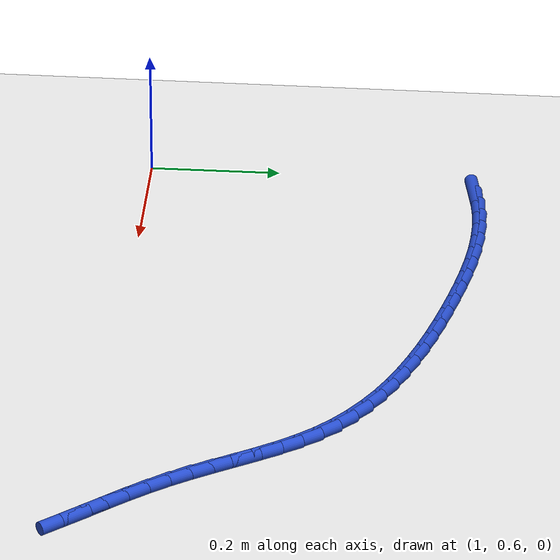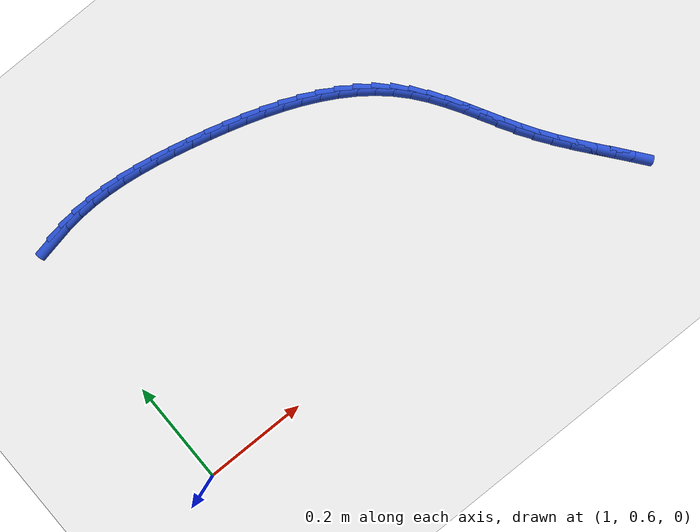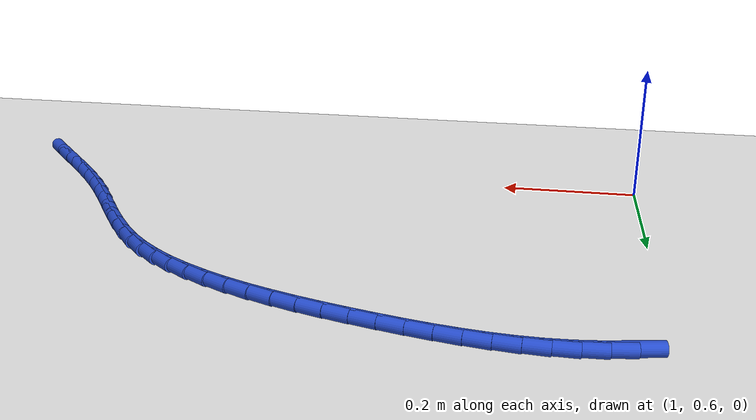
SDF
<sdf version="1.6">
 <world name="default">
  <model name="ground_plane">
   <static>1</static>
   <link name="link">
    <collision name="collision">
     <geometry><plane><normal>0 0 1</normal><size>100 100</size></plane></geometry>
     <surface><friction><ode><mu>100</mu><mu2>50</mu2></ode></friction></surface>
    </collision>
    <visual name="visual">
     <cast_shadows>0</cast_shadows>
     <geometry><plane><normal>0 0 1</normal><size>100 100</size></plane></geometry>
     <material>
      <script><uri>file://media/materials/scripts/gazebo.material</uri><name>Gazebo/WhiteGlow</name></script>
     </material>
    </visual>
   </link>
  </model>
  <model name="line">
   <link name="link_49">
    <pose>1.0501418941555487 1.106161228699307 0.01 0 1.57 0.18047848449558837</pose>
    <collision name="collision">
     <geometry><cylinder><radius>0.01</radius><length>0.08</length></cylinder></geometry>
    </collision>
    <visual name="visual">
     <material>
      <script><name>Gazebo/Blue</name><uri>file://media/materials/scripts/gazebo.material</uri></script>
     </material>
     <geometry><cylinder><radius>0.01</radius><length>0.08</length></cylinder></geometry>
    </visual>
   </link>
   <link name="link_50">
    <pose>1.0819418110127272 1.1119635655688427 0.01 0 1.57 0.1095363059471987</pose>
    <collision name="collision">
     <geometry><cylinder><radius>0.01</radius><length>0.08</length></cylinder></geometry>
    </collision>
    <visual name="visual">
     <material>
      <script><name>Gazebo/Blue</name><uri>file://media/materials/scripts/gazebo.material</uri></script>
     </material>
     <geometry><cylinder><radius>0.01</radius><length>0.08</length></cylinder></geometry>
    </visual>
   </link>
   <link name="link_51">
    <pose>1.1141065732753948 1.1155009334898973 0.01 0 1.57 0.03584947656787952</pose>
    <collision name="collision">
     <geometry><cylinder><radius>0.01</radius><length>0.08</length></cylinder></geometry>
    </collision>
    <visual name="visual">
     <material>
      <script><name>Gazebo/Blue</name><uri>file://media/materials/scripts/gazebo.material</uri></script>
     </material>
     <geometry><cylinder><radius>0.01</radius><length>0.08</length></cylinder></geometry>
    </visual>
   </link>
   <link name="link_52">
    <pose>1.146678751920672 1.1166691295372233 0.01 0 1.57 -0.029940667456427227</pose>
    <collision name="collision">
     <geometry><cylinder><radius>0.01</radius><length>0.08</length></cylinder></geometry>
    </collision>
    <visual name="visual">
     <material>
      <script><name>Gazebo/Blue</name><uri>file://media/materials/scripts/gazebo.material</uri></script>
     </material>
     <geometry><cylinder><radius>0.01</radius><length>0.08</length></cylinder></geometry>
    </visual>
   </link>
   <link name="link_53">
    <pose>1.1796179706755174 1.1156826125389854 0.01 0 1.57 -0.08688996958565974</pose>
    <collision name="collision">
     <geometry><cylinder><radius>0.01</radius><length>0.08</length></cylinder></geometry>
    </collision>
    <visual name="visual">
     <material>
      <script><name>Gazebo/Blue</name><uri>file://media/materials/scripts/gazebo.material</uri></script>
     </material>
     <geometry><cylinder><radius>0.01</radius><length>0.08</length></cylinder></geometry>
    </visual>
   </link>
   <link name="link_54">
    <pose>1.2128761285576757 1.1127855176462742 0.01 0 1.57 -0.13527594651336852</pose>
    <collision name="collision">
     <geometry><cylinder><radius>0.01</radius><length>0.08</length></cylinder></geometry>
    </collision>
    <visual name="visual">
     <material>
      <script><name>Gazebo/Blue</name><uri>file://media/materials/scripts/gazebo.material</uri></script>
     </material>
     <geometry><cylinder><radius>0.01</radius><length>0.08</length></cylinder></geometry>
    </visual>
   </link>
   <link name="link_55">
    <pose>1.246405124584893 1.1082219800101811 0.01 0 1.57 -0.17552421466811913</pose>
    <collision name="collision">
     <geometry><cylinder><radius>0.01</radius><length>0.08</length></cylinder></geometry>
    </collision>
    <visual name="visual">
     <material>
      <script><name>Gazebo/Blue</name><uri>file://media/materials/scripts/gazebo.material</uri></script>
     </material>
     <geometry><cylinder><radius>0.01</radius><length>0.08</length></cylinder></geometry>
    </visual>
   </link>
   <link name="link_56">
    <pose>1.2801568577749152 1.1022361347817975 0.01 0 1.57 -0.20810648096598622</pose>
    <collision name="collision">
     <geometry><cylinder><radius>0.01</radius><length>0.08</length></cylinder></geometry>
    </collision>
    <visual name="visual">
     <material>
      <script><name>Gazebo/Blue</name><uri>file://media/materials/scripts/gazebo.material</uri></script>
     </material>
     <geometry><cylinder><radius>0.01</radius><length>0.08</length></cylinder></geometry>
    </visual>
   </link>
   <link name="link_57">
    <pose>1.3140832271454888 1.0950721171122149 0.01 0 1.57 -0.23347138581808904</pose>
    <collision name="collision">
     <geometry><cylinder><radius>0.01</radius><length>0.08</length></cylinder></geometry>
    </collision>
    <visual name="visual">
     <material>
      <script><name>Gazebo/Blue</name><uri>file://media/materials/scripts/gazebo.material</uri></script>
     </material>
     <geometry><cylinder><radius>0.01</radius><length>0.08</length></cylinder></geometry>
    </visual>
   </link>
   <link name="link_58">
    <pose>1.3481361317143583 1.0869740621525237 0.01 0 1.57 -0.2523281253426804</pose>
    <collision name="collision">
     <geometry><cylinder><radius>0.01</radius><length>0.08</length></cylinder></geometry>
    </collision>
    <visual name="visual">
     <material>
      <script><name>Gazebo/Blue</name><uri>file://media/materials/scripts/gazebo.material</uri></script>
     </material>
     <geometry><cylinder><radius>0.01</radius><length>0.08</length></cylinder></geometry>
    </visual>
   </link>
   <link name="link_59">
    <pose>1.3822631749105763 1.0781753146162425 0.01 0 1.57 -0.2708769066060048</pose>
    <collision name="collision">
     <geometry><cylinder><radius>0.01</radius><length>0.08</length></cylinder></geometry>
    </collision>
    <visual name="visual">
     <material>
      <script><name>Gazebo/Blue</name><uri>file://media/materials/scripts/gazebo.material</uri></script>
     </material>
     <geometry><cylinder><radius>0.01</radius><length>0.08</length></cylinder></geometry>
    </visual>
   </link>
   <link name="link_60">
    <pose>1.4163341357294066 1.0687137257108612 0.01 0 1.57 -0.29448013508410376</pose>
    <collision name="collision">
     <geometry><cylinder><radius>0.01</radius><length>0.08</length></cylinder></geometry>
    </collision>
    <visual name="visual">
     <material>
      <script><name>Gazebo/Blue</name><uri>file://media/materials/scripts/gazebo.material</uri></script>
     </material>
     <geometry><cylinder><radius>0.01</radius><length>0.08</length></cylinder></geometry>
    </visual>
   </link>
   <link name="link_61">
    <pose>1.450151096593502 1.058457094133596 0.01 0 1.57 -0.32360046700444534</pose>
    <collision name="collision">
     <geometry><cylinder><radius>0.01</radius><length>0.08</length></cylinder></geometry>
    </collision>
    <visual name="visual">
     <material>
      <script><name>Gazebo/Blue</name><uri>file://media/materials/scripts/gazebo.material</uri></script>
     </material>
     <geometry><cylinder><radius>0.01</radius><length>0.08</length></cylinder></geometry>
    </visual>
   </link>
   <link name="link_62">
    <pose>1.4835138822596006 1.047267547367574 0.01 0 1.57 -0.3586278318809204</pose>
    <collision name="collision">
     <geometry><cylinder><radius>0.01</radius><length>0.08</length></cylinder></geometry>
    </collision>
    <visual name="visual">
     <material>
      <script><name>Gazebo/Blue</name><uri>file://media/materials/scripts/gazebo.material</uri></script>
     </material>
     <geometry><cylinder><radius>0.01</radius><length>0.08</length></cylinder></geometry>
    </visual>
   </link>
   <link name="link_63">
    <pose>1.5162223174844387 1.0350072128959238 0.01 0 1.57 -0.4000366925408505</pose>
    <collision name="collision">
     <geometry><cylinder><radius>0.01</radius><length>0.08</length></cylinder></geometry>
    </collision>
    <visual name="visual">
     <material>
      <script><name>Gazebo/Blue</name><uri>file://media/materials/scripts/gazebo.material</uri></script>
     </material>
     <geometry><cylinder><radius>0.01</radius><length>0.08</length></cylinder></geometry>
    </visual>
   </link>
   <link name="link_64">
    <pose>1.5480762270247537 1.021538218201773 0.01 0 1.57 -0.4483616194460339</pose>
    <collision name="collision">
     <geometry><cylinder><radius>0.01</radius><length>0.08</length></cylinder></geometry>
    </collision>
    <visual name="visual">
     <material>
      <script><name>Gazebo/Blue</name><uri>file://media/materials/scripts/gazebo.material</uri></script>
     </material>
     <geometry><cylinder><radius>0.01</radius><length>0.08</length></cylinder></geometry>
    </visual>
   </link>
   <link name="link_65">
    <pose>1.5788754356372832 1.00672269076825 0.01 0 1.57 -0.504155876282202</pose>
    <collision name="collision">
     <geometry><cylinder><radius>0.01</radius><length>0.08</length></cylinder></geometry>
    </collision>
    <visual name="visual">
     <material>
      <script><name>Gazebo/Blue</name><uri>file://media/materials/scripts/gazebo.material</uri></script>
     </material>
     <geometry><cylinder><radius>0.01</radius><length>0.08</length></cylinder></geometry>
    </visual>
   </link>
   <link name="link_66">
    <pose>1.6084197680787642 0.9904227580784825 0.01 0 1.57 -0.5679246658376544</pose>
    <collision name="collision">
     <geometry><cylinder><radius>0.01</radius><length>0.08</length></cylinder></geometry>
    </collision>
    <visual name="visual">
     <material>
      <script><name>Gazebo/Blue</name><uri>file://media/materials/scripts/gazebo.material</uri></script>
     </material>
     <geometry><cylinder><radius>0.01</radius><length>0.08</length></cylinder></geometry>
    </visual>
   </link>
   <link name="link_67">
    <pose>1.6365090491059342 0.9725005476155988 0.01 0 1.57 -0.6400255272742617</pose>
    <collision name="collision">
     <geometry><cylinder><radius>0.01</radius><length>0.08</length></cylinder></geometry>
    </collision>
    <visual name="visual">
     <material>
      <script><name>Gazebo/Blue</name><uri>file://media/materials/scripts/gazebo.material</uri></script>
     </material>
     <geometry><cylinder><radius>0.01</radius><length>0.08</length></cylinder></geometry>
    </visual>
   </link>
   <link name="link_68">
    <pose>1.6629431034755304 0.9528181868627268 0.01 0 1.57 -0.7205340963091029</pose>
    <collision name="collision">
     <geometry><cylinder><radius>0.01</radius><length>0.08</length></cylinder></geometry>
    </collision>
    <visual name="visual">
     <material>
      <script><name>Gazebo/Blue</name><uri>file://media/materials/scripts/gazebo.material</uri></script>
     </material>
     <geometry><cylinder><radius>0.01</radius><length>0.08</length></cylinder></geometry>
    </visual>
   </link>
   <link name="link_69">
    <pose>1.6875217559442903 0.9312378033029945 0.01 0 1.57 -0.8090737651607606</pose>
    <collision name="collision">
     <geometry><cylinder><radius>0.01</radius><length>0.08</length></cylinder></geometry>
    </collision>
    <visual name="visual">
     <material>
      <script><name>Gazebo/Blue</name><uri>file://media/materials/scripts/gazebo.material</uri></script>
     </material>
     <geometry><cylinder><radius>0.01</radius><length>0.08</length></cylinder></geometry>
    </visual>
   </link>
   <link name="link_70">
    <pose>1.7100451761367708 0.907621800351638 0.01 0 1.57 -0.8977581351296104</pose>
    <collision name="collision">
     <geometry><cylinder><radius>0.01</radius><length>0.08</length></cylinder></geometry>
    </collision>
    <visual name="visual">
     <material>
      <script><name>Gazebo/Blue</name><uri>file://media/materials/scripts/gazebo.material</uri></script>
     </material>
     <geometry><cylinder><radius>0.01</radius><length>0.08</length></cylinder></geometry>
    </visual>
   </link>
   <link name="link_71">
    <pose>1.7304912652548834 0.8819747861933385 0.01 0 1.57 -0.9673729879554962</pose>
    <collision name="collision">
     <geometry><cylinder><radius>0.01</radius><length>0.08</length></cylinder></geometry>
    </collision>
    <visual name="visual">
     <material>
      <script><name>Gazebo/Blue</name><uri>file://media/materials/scripts/gazebo.material</uri></script>
     </material>
     <geometry><cylinder><radius>0.01</radius><length>0.08</length></cylinder></geometry>
    </visual>
   </link>
   <link name="link_72">
    <pose>1.7493053344820453 0.8546753483002204 0.01 0 1.57 -1.015154472029807</pose>
    <collision name="collision">
     <geometry><cylinder><radius>0.01</radius><length>0.08</length></cylinder></geometry>
    </collision>
    <visual name="visual">
     <material>
      <script><name>Gazebo/Blue</name><uri>file://media/materials/scripts/gazebo.material</uri></script>
     </material>
     <geometry><cylinder><radius>0.01</radius><length>0.08</length></cylinder></geometry>
    </visual>
   </link>
   <link name="link_73">
    <pose>1.7670086167516006 0.8261628198774149 0.01 0 1.57 -1.0419563552210067</pose>
    <collision name="collision">
     <geometry><cylinder><radius>0.01</radius><length>0.08</length></cylinder></geometry>
    </collision>
    <visual name="visual">
     <material>
      <script><name>Gazebo/Blue</name><uri>file://media/materials/scripts/gazebo.material</uri></script>
     </material>
     <geometry><cylinder><radius>0.01</radius><length>0.08</length></cylinder></geometry>
    </visual>
   </link>
   <link name="link_74">
    <pose>1.7841223449968948 0.7968765341300521 0.01 0 1.57 -1.0486196228915903</pose>
    <collision name="collision">
     <geometry><cylinder><radius>0.01</radius><length>0.08</length></cylinder></geometry>
    </collision>
    <visual name="visual">
     <material>
      <script><name>Gazebo/Blue</name><uri>file://media/materials/scripts/gazebo.material</uri></script>
     </material>
     <geometry><cylinder><radius>0.01</radius><length>0.08</length></cylinder></geometry>
    </visual>
   </link>
   <link name="link_75">
    <pose>1.8011677521512734 0.7672558242632626 0.01 0 1.57 -1.0356538628466374</pose>
    <collision name="collision">
     <geometry><cylinder><radius>0.01</radius><length>0.08</length></cylinder></geometry>
    </collision>
    <visual name="visual">
     <material>
      <script><name>Gazebo/Blue</name><uri>file://media/materials/scripts/gazebo.material</uri></script>
     </material>
     <geometry><cylinder><radius>0.01</radius><length>0.08</length></cylinder></geometry>
    </visual>
   </link>
   <link name="link_76">
    <pose>1.8186660711480822 0.7377400234821772 0.01 0 1.57 -1.0031944326292686</pose>
    <collision name="collision">
     <geometry><cylinder><radius>0.01</radius><length>0.08</length></cylinder></geometry>
    </collision>
    <visual name="visual">
     <material>
      <script><name>Gazebo/Blue</name><uri>file://media/materials/scripts/gazebo.material</uri></script>
     </material>
     <geometry><cylinder><radius>0.01</radius><length>0.08</length></cylinder></geometry>
    </visual>
   </link>
   <link name="link_77">
    <pose>1.83713820705642 0.7087682319937668 0.01 0 1.57 -0.9587220980473151</pose>
    <collision name="collision">
     <geometry><cylinder><radius>0.01</radius><length>0.08</length></cylinder></geometry>
    </collision>
    <visual name="visual">
     <material>
      <script><name>Gazebo/Blue</name><uri>file://media/materials/scripts/gazebo.material</uri></script>
     </material>
     <geometry><cylinder><radius>0.01</radius><length>0.08</length></cylinder></geometry>
    </visual>
   </link>
   <link name="link_78">
    <pose>1.8568925736214246 0.680628542116698 0.01 0 1.57 -0.9227784637114881</pose>
    <collision name="collision">
     <geometry><cylinder><radius>0.01</radius><length>0.08</length></cylinder></geometry>
    </collision>
    <visual name="visual">
     <material>
      <script><name>Gazebo/Blue</name><uri>file://media/materials/scripts/gazebo.material</uri></script>
     </material>
     <geometry><cylinder><radius>0.01</radius><length>0.08</length></cylinder></geometry>
    </visual>
   </link>
   <link name="link_79">
    <pose>1.8776595365178956 0.6531982537814465 0.01 0 1.57 -0.8987270306589904</pose>
    <collision name="collision">
     <geometry><cylinder><radius>0.01</radius><length>0.08</length></cylinder></geometry>
    </collision>
    <visual name="visual">
     <material>
      <script><name>Gazebo/Blue</name><uri>file://media/materials/scripts/gazebo.material</uri></script>
     </material>
     <geometry><cylinder><radius>0.01</radius><length>0.08</length></cylinder></geometry>
    </visual>
   </link>
   <link name="link_80">
    <pose>1.8990720943488149 0.6262854725832504 0.01 0 1.57 -0.8864649699935222</pose>
    <collision name="collision">
     <geometry><cylinder><radius>0.01</radius><length>0.08</length></cylinder></geometry>
    </collision>
    <visual name="visual">
     <material>
      <script><name>Gazebo/Blue</name><uri>file://media/materials/scripts/gazebo.material</uri></script>
     </material>
     <geometry><cylinder><radius>0.01</radius><length>0.08</length></cylinder></geometry>
    </visual>
   </link>
   <link name="link_81">
    <pose>1.9207632457171666 0.5996983041173483 0.01 0 1.57 -0.8859956596788255</pose>
    <collision name="collision">
     <geometry><cylinder><radius>0.01</radius><length>0.08</length></cylinder></geometry>
    </collision>
    <visual name="visual">
     <material>
      <script><name>Gazebo/Blue</name><uri>file://media/materials/scripts/gazebo.material</uri></script>
     </material>
     <geometry><cylinder><radius>0.01</radius><length>0.08</length></cylinder></geometry>
    </visual>
   </link>
   <link name="link_82">
    <pose>1.9423659892259335 0.5732448539789776 0.01 0 1.57 -0.8974822185752316</pose>
    <collision name="collision">
     <geometry><cylinder><radius>0.01</radius><length>0.08</length></cylinder></geometry>
    </collision>
    <visual name="visual">
     <material>
      <script><name>Gazebo/Blue</name><uri>file://media/materials/scripts/gazebo.material</uri></script>
     </material>
     <geometry><cylinder><radius>0.01</radius><length>0.08</length></cylinder></geometry>
    </visual>
   </link>
  </model>
 </world>
</sdf>
